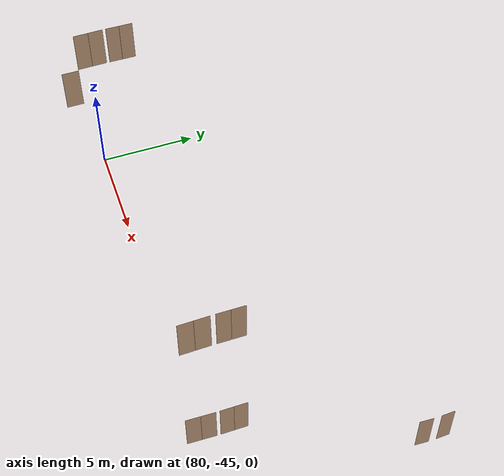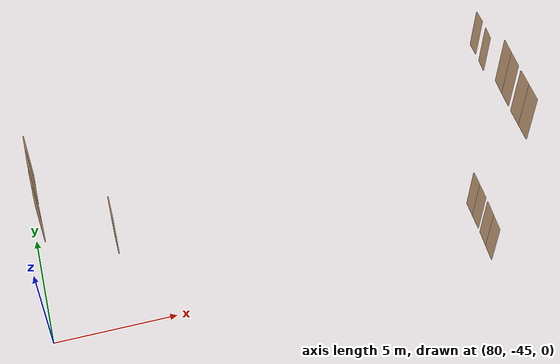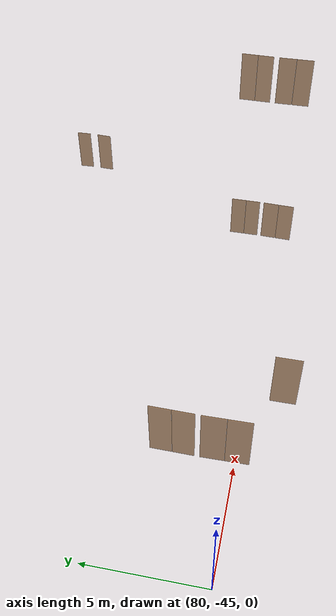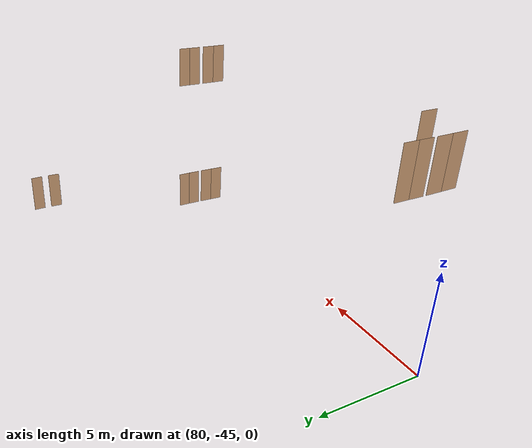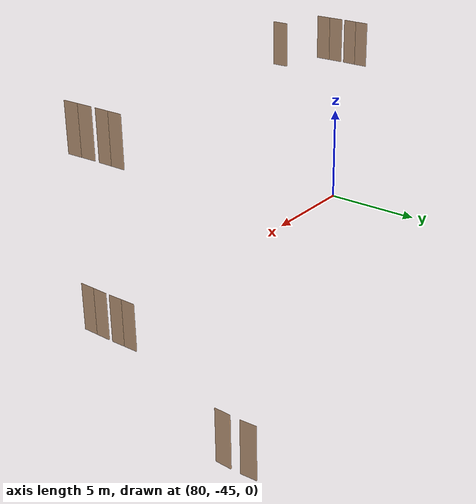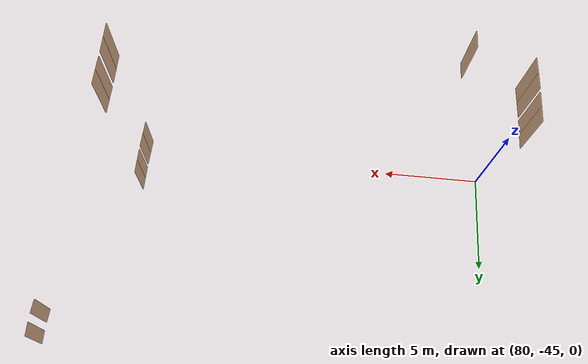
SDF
<sdf version="1.7">
 <world name="sim_world">
  <model name="TD0014CP1">
   <pose>98.26902337660995 -43.42105283281319 0.0 0 0 1.5803984075257813</pose>
   <link name="right">
    <pose>0.34011186770259527 0 1.11 0 0 0</pose>
    <visual name="right_visual">
     <geometry><box><size>0.6702237354051905 0.03 2.2</size></box></geometry>
     <material>
      <ambient>0.5 0.25 0 0.6</ambient>
      <diffuse>0.5 0.25 0 0.6</diffuse>
      <pbr><metal><metalness>0.0</metalness></metal></pbr>
     </material>
    </visual>
    <collision name="right_collision">
     <geometry><box><size>0.6702237354051905 0.03 2.2</size></box></geometry>
     <surface><contact><collide_bitmask>0x02</collide_bitmask></contact></surface>
    </collision>
    <inertial>
     <mass>50.0</mass>
     <inertia><ixx>20.17041666666667</ixx><iyy>22.038332731252034</iyy><izz>1.8754160645853621</izz></inertia>
    </inertial>
   </link>
   <joint name="right_joint" type="revolute">
    <parent>world</parent>
    <child>right</child>
    <axis><xyz>0 0 -1</xyz><limit><lower>0</lower><upper>1.57</upper></limit></axis>
    <pose>0.34011186770259527 0 0 0 0 0</pose>
   </joint>
   <link name="left">
    <pose>-0.34011186770259527 0 1.11 0 0 0</pose>
    <visual name="left_visual">
     <geometry><box><size>0.6702237354051905 0.03 2.2</size></box></geometry>
     <material>
      <ambient>0.5 0.25 0 0.6</ambient>
      <diffuse>0.5 0.25 0 0.6</diffuse>
      <pbr><metal><metalness>0.0</metalness></metal></pbr>
     </material>
    </visual>
    <collision name="left_collision">
     <geometry><box><size>0.6702237354051905 0.03 2.2</size></box></geometry>
     <surface><contact><collide_bitmask>0x02</collide_bitmask></contact></surface>
    </collision>
    <inertial>
     <mass>50.0</mass>
     <inertia><ixx>20.17041666666667</ixx><iyy>22.038332731252034</iyy><izz>1.8754160645853621</izz></inertia>
    </inertial>
   </link>
   <joint name="left_joint" type="revolute">
    <parent>world</parent>
    <child>left</child>
    <axis><xyz>0 0 -1</xyz><limit><lower>-1.57</lower><upper>0</upper></limit></axis>
    <pose>-0.34011186770259527 0 0 0 0 0</pose>
   </joint>
   <plugin name="register_component" filename="libregister_component.so">
    <component name="Door">
     <v_max_door>0.5</v_max_door>
     <a_max_door>0.3</a_max_door>
     <a_nom_door>0.15</a_nom_door>
     <dx_min_door>0.01</dx_min_door>
     <f_max_door>500.0</f_max_door>
     <ros_interface>true</ros_interface>
     <door name="TD0014CP1" type="DoubleSwingDoor" left_joint_name="left_joint" right_joint_name="right_joint"/>
    </component>
   </plugin>
  </model>
  <model name="TD0014CP2">
   <pose>98.2577784869531 -45.01359630240969 0.0 0 0 1.54642404726844</pose>
   <link name="right">
    <pose>0.36471993718789486 0 1.11 0 0 0</pose>
    <visual name="right_visual">
     <geometry><box><size>0.7194398743757897 0.03 2.2</size></box></geometry>
     <material>
      <ambient>0.5 0.25 0 0.6</ambient>
      <diffuse>0.5 0.25 0 0.6</diffuse>
      <pbr><metal><metalness>0.0</metalness></metal></pbr>
     </material>
    </visual>
    <collision name="right_collision">
     <geometry><box><size>0.7194398743757897 0.03 2.2</size></box></geometry>
     <surface><contact><collide_bitmask>0x02</collide_bitmask></contact></surface>
    </collision>
    <inertial>
     <mass>50.0</mass>
     <inertia><ixx>20.17041666666667</ixx><iyy>22.32330722017439</iyy><izz>2.160390553507717</izz></inertia>
    </inertial>
   </link>
   <joint name="right_joint" type="revolute">
    <parent>world</parent>
    <child>right</child>
    <axis><xyz>0 0 -1</xyz><limit><lower>0</lower><upper>1.57</upper></limit></axis>
    <pose>0.36471993718789486 0 0 0 0 0</pose>
   </joint>
   <link name="left">
    <pose>-0.36471993718789486 0 1.11 0 0 0</pose>
    <visual name="left_visual">
     <geometry><box><size>0.7194398743757897 0.03 2.2</size></box></geometry>
     <material>
      <ambient>0.5 0.25 0 0.6</ambient>
      <diffuse>0.5 0.25 0 0.6</diffuse>
      <pbr><metal><metalness>0.0</metalness></metal></pbr>
     </material>
    </visual>
    <collision name="left_collision">
     <geometry><box><size>0.7194398743757897 0.03 2.2</size></box></geometry>
     <surface><contact><collide_bitmask>0x02</collide_bitmask></contact></surface>
    </collision>
    <inertial>
     <mass>50.0</mass>
     <inertia><ixx>20.17041666666667</ixx><iyy>22.32330722017439</iyy><izz>2.160390553507717</izz></inertia>
    </inertial>
   </link>
   <joint name="left_joint" type="revolute">
    <parent>world</parent>
    <child>left</child>
    <axis><xyz>0 0 -1</xyz><limit><lower>-1.57</lower><upper>0</upper></limit></axis>
    <pose>-0.36471993718789486 0 0 0 0 0</pose>
   </joint>
   <plugin name="register_component" filename="libregister_component.so">
    <component name="Door">
     <v_max_door>0.5</v_max_door>
     <a_max_door>0.3</a_max_door>
     <a_nom_door>0.15</a_nom_door>
     <dx_min_door>0.01</dx_min_door>
     <f_max_door>500.0</f_max_door>
     <ros_interface>true</ros_interface>
     <door name="TD0014CP2" type="DoubleSwingDoor" left_joint_name="left_joint" right_joint_name="right_joint"/>
    </component>
   </plugin>
  </model>
  <model name="TD2026CE">
   <pose>101.75445660511082 -35.37022807096245 0.0 0 0 1.5334150025436055</pose>
   <link name="right">
    <pose>0 0 1.11 0 0 0</pose>
    <visual name="right_visual">
     <geometry><box><size>0.6776531327090441 0.03 2.2</size></box></geometry>
     <material>
      <ambient>0.5 0.25 0 0.6</ambient>
      <diffuse>0.5 0.25 0 0.6</diffuse>
      <pbr><metal><metalness>0.0</metalness></metal></pbr>
     </material>
    </visual>
    <collision name="right_collision">
     <geometry><box><size>0.6776531327090441 0.03 2.2</size></box></geometry>
     <surface><contact><collide_bitmask>0x02</collide_bitmask></contact></surface>
    </collision>
    <inertial>
     <mass>50.0</mass>
     <inertia><ixx>20.17041666666667</ixx><iyy>22.080057367793263</iyy><izz>1.9171407011265893</izz></inertia>
    </inertial>
   </link>
   <joint name="right_joint" type="revolute">
    <parent>world</parent>
    <child>right</child>
    <axis><xyz>0 0 -1</xyz><limit><lower>0</lower><upper>1.57</upper></limit></axis>
    <pose>0.3438265663545221 0 0 0 0 0</pose>
   </joint>
   <plugin name="register_component" filename="libregister_component.so">
    <component name="Door">
     <v_max_door>0.5</v_max_door>
     <a_max_door>0.3</a_max_door>
     <a_nom_door>0.15</a_nom_door>
     <dx_min_door>0.01</dx_min_door>
     <f_max_door>500.0</f_max_door>
     <ros_interface>true</ros_interface>
     <door name="TD2026CE" type="SwingDoor" left_joint_name="empty_joint" right_joint_name="right_joint"/>
    </component>
   </plugin>
  </model>
  <model name="TD2025CE">
   <pose>101.75012474143062 -34.29380483621513 0.0 0 0 -1.519501701976483</pose>
   <link name="right">
    <pose>0 0 1.11 0 0 0</pose>
    <visual name="right_visual">
     <geometry><box><size>0.6602105659282514 0.03 2.2</size></box></geometry>
     <material>
      <ambient>0.5 0.25 0 0.6</ambient>
      <diffuse>0.5 0.25 0 0.6</diffuse>
      <pbr><metal><metalness>0.0</metalness></metal></pbr>
     </material>
    </visual>
    <collision name="right_collision">
     <geometry><box><size>0.6602105659282514 0.03 2.2</size></box></geometry>
     <surface><contact><collide_bitmask>0x02</collide_bitmask></contact></surface>
    </collision>
    <inertial>
     <mass>50.0</mass>
     <inertia><ixx>20.17041666666667</ixx><iyy>21.982824964013762</iyy><izz>1.8199082973470921</izz></inertia>
    </inertial>
   </link>
   <joint name="right_joint" type="revolute">
    <parent>world</parent>
    <child>right</child>
    <axis><xyz>0 0 1</xyz><limit><lower>0</lower><upper>1.57</upper></limit></axis>
    <pose>0.33510528296412573 0 0 0 0 0</pose>
   </joint>
   <plugin name="register_component" filename="libregister_component.so">
    <component name="Door">
     <v_max_door>0.5</v_max_door>
     <a_max_door>0.3</a_max_door>
     <a_nom_door>0.15</a_nom_door>
     <dx_min_door>0.01</dx_min_door>
     <f_max_door>500.0</f_max_door>
     <ros_interface>true</ros_interface>
     <door name="TD2025CE" type="SwingDoor" left_joint_name="empty_joint" right_joint_name="right_joint"/>
    </component>
   </plugin>
  </model>
  <model name="bano11">
   <pose>83.12115098966026 -46.42747207679933 8.0 0 0 1.5739918915008537</pose>
   <link name="right">
    <pose>0 0 1.11 0 0 0</pose>
    <visual name="right_visual">
     <geometry><box><size>0.8085229082769446 0.03 2.2</size></box></geometry>
     <material>
      <ambient>0.5 0.25 0 0.6</ambient>
      <diffuse>0.5 0.25 0 0.6</diffuse>
      <pbr><metal><metalness>0.0</metalness></metal></pbr>
     </material>
    </visual>
    <collision name="right_collision">
     <geometry><box><size>0.8085229082769446 0.03 2.2</size></box></geometry>
     <surface><contact><collide_bitmask>0x02</collide_bitmask></contact></surface>
    </collision>
    <inertial>
     <mass>50.0</mass>
     <inertia><ixx>20.17041666666667</ixx><iyy>22.890455388369208</iyy><izz>2.727538721702536</izz></inertia>
    </inertial>
   </link>
   <joint name="right_joint" type="revolute">
    <parent>world</parent>
    <child>right</child>
    <axis><xyz>0 0 -1</xyz><limit><lower>0</lower><upper>1.57</upper></limit></axis>
    <pose>0.4092614541384723 0 0 0 0 0</pose>
   </joint>
   <plugin name="register_component" filename="libregister_component.so">
    <component name="Door">
     <v_max_door>0.5</v_max_door>
     <a_max_door>0.3</a_max_door>
     <a_nom_door>0.15</a_nom_door>
     <dx_min_door>0.01</dx_min_door>
     <f_max_door>500.0</f_max_door>
     <ros_interface>true</ros_interface>
     <door name="bano11" type="SwingDoor" left_joint_name="empty_joint" right_joint_name="right_joint"/>
    </component>
   </plugin>
  </model>
  <model name="TD0123CP4">
   <pose>98.2893497568908 -45.014243545732946 8.0 0 0 1.5965628936361385</pose>
   <link name="right">
    <pose>0.3572903923254022 0 1.11 0 0 0</pose>
    <visual name="right_visual">
     <geometry><box><size>0.7045807846508044 0.03 2.2</size></box></geometry>
     <material>
      <ambient>0.5 0.25 0 0.6</ambient>
      <diffuse>0.5 0.25 0 0.6</diffuse>
      <pbr><metal><metalness>0.0</metalness></metal></pbr>
     </material>
    </visual>
    <collision name="right_collision">
     <geometry><box><size>0.7045807846508044 0.03 2.2</size></box></geometry>
     <surface><contact><collide_bitmask>0x02</collide_bitmask></contact></surface>
    </collision>
    <inertial>
     <mass>50.0</mass>
     <inertia><ixx>20.17041666666667</ixx><iyy>22.235142008746436</iyy><izz>2.0722253420797636</izz></inertia>
    </inertial>
   </link>
   <joint name="right_joint" type="revolute">
    <parent>world</parent>
    <child>right</child>
    <axis><xyz>0 0 -1</xyz><limit><lower>0</lower><upper>1.57</upper></limit></axis>
    <pose>0.3572903923254022 0 0 0 0 0</pose>
   </joint>
   <link name="left">
    <pose>-0.3572903923254022 0 1.11 0 0 0</pose>
    <visual name="left_visual">
     <geometry><box><size>0.7045807846508044 0.03 2.2</size></box></geometry>
     <material>
      <ambient>0.5 0.25 0 0.6</ambient>
      <diffuse>0.5 0.25 0 0.6</diffuse>
      <pbr><metal><metalness>0.0</metalness></metal></pbr>
     </material>
    </visual>
    <collision name="left_collision">
     <geometry><box><size>0.7045807846508044 0.03 2.2</size></box></geometry>
     <surface><contact><collide_bitmask>0x02</collide_bitmask></contact></surface>
    </collision>
    <inertial>
     <mass>50.0</mass>
     <inertia><ixx>20.17041666666667</ixx><iyy>22.235142008746436</iyy><izz>2.0722253420797636</izz></inertia>
    </inertial>
   </link>
   <joint name="left_joint" type="revolute">
    <parent>world</parent>
    <child>left</child>
    <axis><xyz>0 0 -1</xyz><limit><lower>-1.57</lower><upper>0</upper></limit></axis>
    <pose>-0.3572903923254022 0 0 0 0 0</pose>
   </joint>
   <plugin name="register_component" filename="libregister_component.so">
    <component name="Door">
     <v_max_door>0.5</v_max_door>
     <a_max_door>0.3</a_max_door>
     <a_nom_door>0.15</a_nom_door>
     <dx_min_door>0.01</dx_min_door>
     <f_max_door>500.0</f_max_door>
     <ros_interface>true</ros_interface>
     <door name="TD0123CP4" type="DoubleSwingDoor" left_joint_name="left_joint" right_joint_name="right_joint"/>
    </component>
   </plugin>
  </model>
  <model name="TD0123CP3">
   <pose>98.26936857519783 -43.424121061480164 8.0 0 0 1.573122115917073</pose>
   <link name="right">
    <pose>0.32936348724030956 0 1.11 0 0 0</pose>
    <visual name="right_visual">
     <geometry><box><size>0.6487269744806191 0.03 2.2</size></box></geometry>
     <material>
      <ambient>0.5 0.25 0 0.6</ambient>
      <diffuse>0.5 0.25 0 0.6</diffuse>
      <pbr><metal><metalness>0.0</metalness></metal></pbr>
     </material>
    </visual>
    <collision name="right_collision">
     <geometry><box><size>0.6487269744806191 0.03 2.2</size></box></geometry>
     <surface><contact><collide_bitmask>0x02</collide_bitmask></contact></surface>
    </collision>
    <inertial>
     <mass>50.0</mass>
     <inertia><ixx>20.17041666666667</ixx><iyy>21.92019453091158</iyy><izz>1.7572778642449078</izz></inertia>
    </inertial>
   </link>
   <joint name="right_joint" type="revolute">
    <parent>world</parent>
    <child>right</child>
    <axis><xyz>0 0 -1</xyz><limit><lower>0</lower><upper>1.57</upper></limit></axis>
    <pose>0.32936348724030956 0 0 0 0 0</pose>
   </joint>
   <link name="left">
    <pose>-0.32936348724030956 0 1.11 0 0 0</pose>
    <visual name="left_visual">
     <geometry><box><size>0.6487269744806191 0.03 2.2</size></box></geometry>
     <material>
      <ambient>0.5 0.25 0 0.6</ambient>
      <diffuse>0.5 0.25 0 0.6</diffuse>
      <pbr><metal><metalness>0.0</metalness></metal></pbr>
     </material>
    </visual>
    <collision name="left_collision">
     <geometry><box><size>0.6487269744806191 0.03 2.2</size></box></geometry>
     <surface><contact><collide_bitmask>0x02</collide_bitmask></contact></surface>
    </collision>
    <inertial>
     <mass>50.0</mass>
     <inertia><ixx>20.17041666666667</ixx><iyy>21.92019453091158</iyy><izz>1.7572778642449078</izz></inertia>
    </inertial>
   </link>
   <joint name="left_joint" type="revolute">
    <parent>world</parent>
    <child>left</child>
    <axis><xyz>0 0 -1</xyz><limit><lower>-1.57</lower><upper>0</upper></limit></axis>
    <pose>-0.32936348724030956 0 0 0 0 0</pose>
   </joint>
   <plugin name="register_component" filename="libregister_component.so">
    <component name="Door">
     <v_max_door>0.5</v_max_door>
     <a_max_door>0.3</a_max_door>
     <a_nom_door>0.15</a_nom_door>
     <dx_min_door>0.01</dx_min_door>
     <f_max_door>500.0</f_max_door>
     <ros_interface>true</ros_interface>
     <door name="TD0123CP3" type="DoubleSwingDoor" left_joint_name="left_joint" right_joint_name="right_joint"/>
    </component>
   </plugin>
  </model>
  <model name="TD0123CP1">
   <pose>80.76817690430725 -43.446210642965184 8.0 0 0 -1.5810030175274183</pose>
   <link name="right">
    <pose>0.33499792972939585 0 1.11 0 0 0</pose>
    <visual name="right_visual">
     <geometry><box><size>0.6599958594587917 0.03 2.2</size></box></geometry>
     <material>
      <ambient>0.5 0.25 0 0.6</ambient>
      <diffuse>0.5 0.25 0 0.6</diffuse>
      <pbr><metal><metalness>0.0</metalness></metal></pbr>
     </material>
    </visual>
    <collision name="right_collision">
     <geometry><box><size>0.6599958594587917 0.03 2.2</size></box></geometry>
     <surface><contact><collide_bitmask>0x02</collide_bitmask></contact></surface>
    </collision>
    <inertial>
     <mass>50.0</mass>
     <inertia><ixx>20.17041666666667</ixx><iyy>21.981643893761458</iyy><izz>1.818727227094788</izz></inertia>
    </inertial>
   </link>
   <joint name="right_joint" type="revolute">
    <parent>world</parent>
    <child>right</child>
    <axis><xyz>0 0 -1</xyz><limit><lower>0</lower><upper>1.57</upper></limit></axis>
    <pose>0.33499792972939585 0 0 0 0 0</pose>
   </joint>
   <link name="left">
    <pose>-0.33499792972939585 0 1.11 0 0 0</pose>
    <visual name="left_visual">
     <geometry><box><size>0.6599958594587917 0.03 2.2</size></box></geometry>
     <material>
      <ambient>0.5 0.25 0 0.6</ambient>
      <diffuse>0.5 0.25 0 0.6</diffuse>
      <pbr><metal><metalness>0.0</metalness></metal></pbr>
     </material>
    </visual>
    <collision name="left_collision">
     <geometry><box><size>0.6599958594587917 0.03 2.2</size></box></geometry>
     <surface><contact><collide_bitmask>0x02</collide_bitmask></contact></surface>
    </collision>
    <inertial>
     <mass>50.0</mass>
     <inertia><ixx>20.17041666666667</ixx><iyy>21.981643893761458</iyy><izz>1.818727227094788</izz></inertia>
    </inertial>
   </link>
   <joint name="left_joint" type="revolute">
    <parent>world</parent>
    <child>left</child>
    <axis><xyz>0 0 -1</xyz><limit><lower>-1.57</lower><upper>0</upper></limit></axis>
    <pose>-0.33499792972939585 0 0 0 0 0</pose>
   </joint>
   <plugin name="register_component" filename="libregister_component.so">
    <component name="Door">
     <v_max_door>0.5</v_max_door>
     <a_max_door>0.3</a_max_door>
     <a_nom_door>0.15</a_nom_door>
     <dx_min_door>0.01</dx_min_door>
     <f_max_door>500.0</f_max_door>
     <ros_interface>true</ros_interface>
     <door name="TD0123CP1" type="DoubleSwingDoor" left_joint_name="left_joint" right_joint_name="right_joint"/>
    </component>
   </plugin>
  </model>
  <model name="TD0123CP2">
   <pose>80.77027340353536 -45.0007592736398 8.0 0 0 -1.5535864209297303</pose>
   <link name="right">
    <pose>0.3664126367814453 0 1.11 0 0 0</pose>
    <visual name="right_visual">
     <geometry><box><size>0.7228252735628906 0.03 2.2</size></box></geometry>
     <material>
      <ambient>0.5 0.25 0 0.6</ambient>
      <diffuse>0.5 0.25 0 0.6</diffuse>
      <pbr><metal><metalness>0.0</metalness></metal></pbr>
     </material>
    </visual>
    <collision name="right_collision">
     <geometry><box><size>0.7228252735628906 0.03 2.2</size></box></geometry>
     <surface><contact><collide_bitmask>0x02</collide_bitmask></contact></surface>
    </collision>
    <inertial>
     <mass>50.0</mass>
     <inertia><ixx>20.17041666666667</ixx><iyy>22.34365156708862</iyy><izz>2.1807349004219487</izz></inertia>
    </inertial>
   </link>
   <joint name="right_joint" type="revolute">
    <parent>world</parent>
    <child>right</child>
    <axis><xyz>0 0 -1</xyz><limit><lower>0</lower><upper>1.57</upper></limit></axis>
    <pose>0.3664126367814453 0 0 0 0 0</pose>
   </joint>
   <link name="left">
    <pose>-0.3664126367814453 0 1.11 0 0 0</pose>
    <visual name="left_visual">
     <geometry><box><size>0.7228252735628906 0.03 2.2</size></box></geometry>
     <material>
      <ambient>0.5 0.25 0 0.6</ambient>
      <diffuse>0.5 0.25 0 0.6</diffuse>
      <pbr><metal><metalness>0.0</metalness></metal></pbr>
     </material>
    </visual>
    <collision name="left_collision">
     <geometry><box><size>0.7228252735628906 0.03 2.2</size></box></geometry>
     <surface><contact><collide_bitmask>0x02</collide_bitmask></contact></surface>
    </collision>
    <inertial>
     <mass>50.0</mass>
     <inertia><ixx>20.17041666666667</ixx><iyy>22.34365156708862</iyy><izz>2.1807349004219487</izz></inertia>
    </inertial>
   </link>
   <joint name="left_joint" type="revolute">
    <parent>world</parent>
    <child>left</child>
    <axis><xyz>0 0 -1</xyz><limit><lower>-1.57</lower><upper>0</upper></limit></axis>
    <pose>-0.3664126367814453 0 0 0 0 0</pose>
   </joint>
   <plugin name="register_component" filename="libregister_component.so">
    <component name="Door">
     <v_max_door>0.5</v_max_door>
     <a_max_door>0.3</a_max_door>
     <a_nom_door>0.15</a_nom_door>
     <dx_min_door>0.01</dx_min_door>
     <f_max_door>500.0</f_max_door>
     <ros_interface>true</ros_interface>
     <door name="TD0123CP2" type="DoubleSwingDoor" left_joint_name="left_joint" right_joint_name="right_joint"/>
    </component>
   </plugin>
  </model>
 </world>
</sdf>
